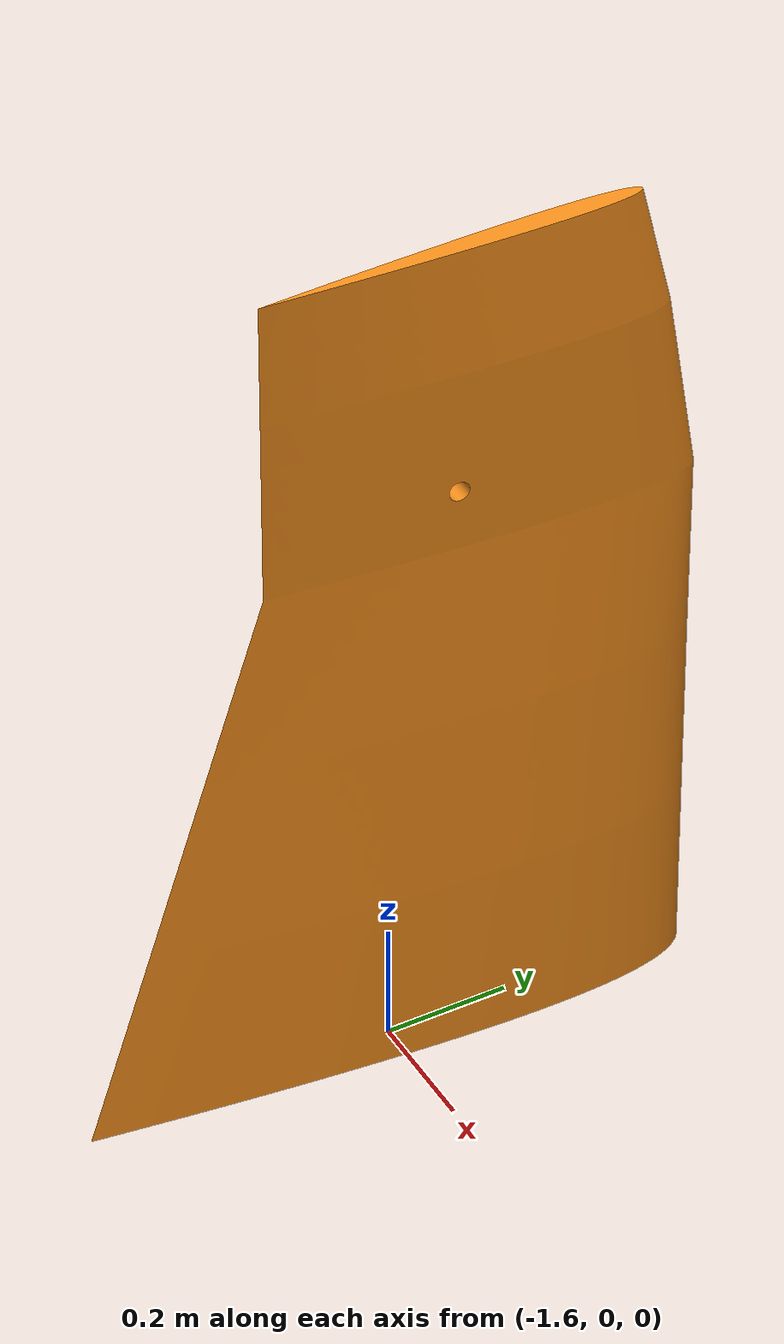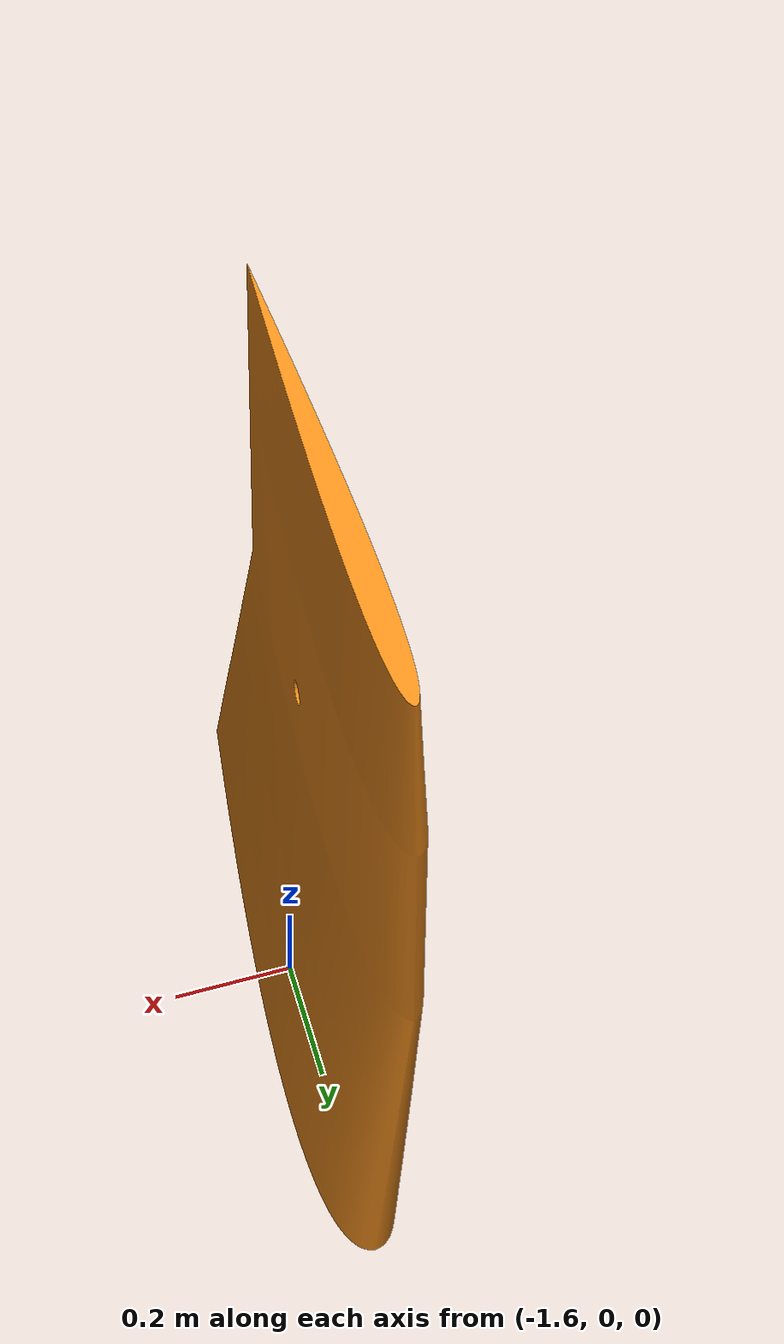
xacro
<?xml version="1.0"?>

<robot xmlns:xacro="http://www.ros.org/wiki/xacro" name = "wing">
  <link name="world"/>

  <joint name="fixed" type="fixed">
    <parent link="world"/>
    <child link="my_wing"/>
  </joint>

  <link name="my_wing">
    <inertial>
      <origin xyz="-1.6 0 0" />
      <mass value="1.0" />
      <inertia  ixx="1.0" ixy="0.0"  ixz="0.0"  iyy="1.0"  iyz="0.0"  izz="1.0" />
    </inertial>
    <visual>
      <origin rpy="1.5708 -0 3.14159" xyz="-1.6 0 0" />
        <geometry>
          <mesh filename="package://panda_controllers/models/wingprofile.dae" scale="0.01 0.01 0.01"/>
        </geometry>
    </visual>
      <collision>
      <origin rpy="1.5708 -0 3.14159" xyz="-1.6 0 0" />
        <geometry>
          <mesh filename="package://panda_controllers/models/wingprofile.dae" scale="0.01 0.01 0.01"/>
        </geometry>
      </collision>
    </link>

  <gazebo reference="my_wing">
    <material>Gazebo/Orange</material>
  </gazebo>
  <gazebo>
    <static>true</static>
  </gazebo>
</robot>
